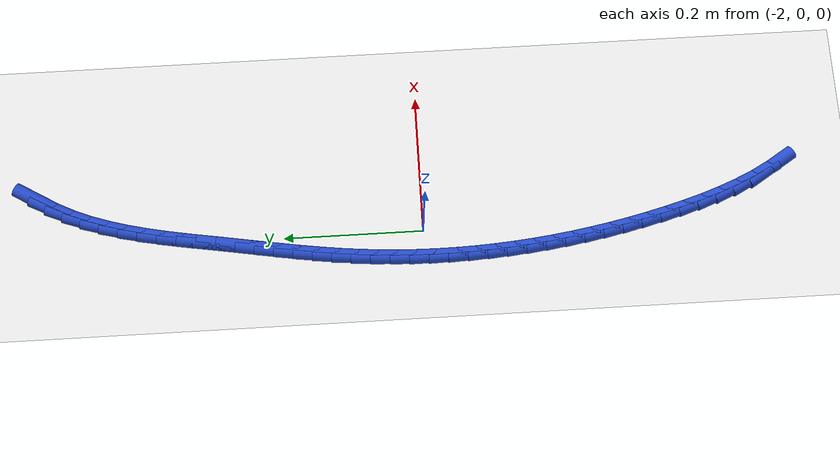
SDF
<sdf version="1.6">
 <world name="default">
  <model name="ground_plane">
   <static>1</static>
   <link name="link">
    <collision name="collision">
     <geometry><plane><normal>0 0 1</normal><size>100 100</size></plane></geometry>
     <surface><friction><ode><mu>100</mu><mu2>50</mu2></ode></friction></surface>
    </collision>
    <visual name="visual">
     <cast_shadows>0</cast_shadows>
     <geometry><plane><normal>0 0 1</normal><size>100 100</size></plane></geometry>
     <material>
      <script><uri>file://media/materials/scripts/gazebo.material</uri><name>Gazebo/WhiteGlow</name></script>
     </material>
    </visual>
   </link>
  </model>
  <model name="line">
   <link name="link_100">
    <pose>-1.9276568317619174 0.5463120573946518 0.01 0 1.57 1.0361481505127497</pose>
    <collision name="collision">
     <geometry><cylinder><radius>0.01</radius><length>0.08</length></cylinder></geometry>
    </collision>
    <visual name="visual">
     <material>
      <script><name>Gazebo/Blue</name><uri>file://media/materials/scripts/gazebo.material</uri></script>
     </material>
     <geometry><cylinder><radius>0.01</radius><length>0.08</length></cylinder></geometry>
    </visual>
   </link>
   <link name="link_101">
    <pose>-1.9413688873857438 0.5231567634488093 0.01 0 1.57 1.114810387325386</pose>
    <collision name="collision">
     <geometry><cylinder><radius>0.01</radius><length>0.08</length></cylinder></geometry>
    </collision>
    <visual name="visual">
     <material>
      <script><name>Gazebo/Blue</name><uri>file://media/materials/scripts/gazebo.material</uri></script>
     </material>
     <geometry><cylinder><radius>0.01</radius><length>0.08</length></cylinder></geometry>
    </visual>
   </link>
   <link name="link_102">
    <pose>-1.9532353547929067 0.49896216054540987 0.01 0 1.57 1.1866396649966138</pose>
    <collision name="collision">
     <geometry><cylinder><radius>0.01</radius><length>0.08</length></cylinder></geometry>
    </collision>
    <visual name="visual">
     <material>
      <script><name>Gazebo/Blue</name><uri>file://media/materials/scripts/gazebo.material</uri></script>
     </material>
     <geometry><cylinder><radius>0.01</radius><length>0.08</length></cylinder></geometry>
    </visual>
   </link>
   <link name="link_103">
    <pose>-1.963398356713197 0.4738211840821822 0.01 0 1.57 1.2478036752640835</pose>
    <collision name="collision">
     <geometry><cylinder><radius>0.01</radius><length>0.08</length></cylinder></geometry>
    </collision>
    <visual name="visual">
     <material>
      <script><name>Gazebo/Blue</name><uri>file://media/materials/scripts/gazebo.material</uri></script>
     </material>
     <geometry><cylinder><radius>0.01</radius><length>0.08</length></cylinder></geometry>
    </visual>
   </link>
   <link name="link_104">
    <pose>-1.9720823165234624 0.4478767674847543 0.01 0 1.57 1.2984861281508806</pose>
    <collision name="collision">
     <geometry><cylinder><radius>0.01</radius><length>0.08</length></cylinder></geometry>
    </collision>
    <visual name="visual">
     <material>
      <script><name>Gazebo/Blue</name><uri>file://media/materials/scripts/gazebo.material</uri></script>
     </material>
     <geometry><cylinder><radius>0.01</radius><length>0.08</length></cylinder></geometry>
    </visual>
   </link>
   <link name="link_105">
    <pose>-1.9795116582403096 0.42127184456741174 0.01 0 1.57 1.3390984253755343</pose>
    <collision name="collision">
     <geometry><cylinder><radius>0.01</radius><length>0.08</length></cylinder></geometry>
    </collision>
    <visual name="visual">
     <material>
      <script><name>Gazebo/Blue</name><uri>file://media/materials/scripts/gazebo.material</uri></script>
     </material>
     <geometry><cylinder><radius>0.01</radius><length>0.08</length></cylinder></geometry>
    </visual>
   </link>
   <link name="link_106">
    <pose>-1.985910805880345 0.39414934914443855 0.01 0 1.57 1.37011760212782</pose>
    <collision name="collision">
     <geometry><cylinder><radius>0.01</radius><length>0.08</length></cylinder></geometry>
    </collision>
    <visual name="visual">
     <material>
      <script><name>Gazebo/Blue</name><uri>file://media/materials/scripts/gazebo.material</uri></script>
     </material>
     <geometry><cylinder><radius>0.01</radius><length>0.08</length></cylinder></geometry>
    </visual>
   </link>
   <link name="link_107">
    <pose>-1.9915041834601732 0.3666522150301193 0.01 0 1.57 1.3919754883610613</pose>
    <collision name="collision">
     <geometry><cylinder><radius>0.01</radius><length>0.08</length></cylinder></geometry>
    </collision>
    <visual name="visual">
     <material>
      <script><name>Gazebo/Blue</name><uri>file://media/materials/scripts/gazebo.material</uri></script>
     </material>
     <geometry><cylinder><radius>0.01</radius><length>0.08</length></cylinder></geometry>
    </visual>
   </link>
   <link name="link_108">
    <pose>-1.996516214996402 0.3389233760387384 0.01 0 1.57 1.4049887167758068</pose>
    <collision name="collision">
     <geometry><cylinder><radius>0.01</radius><length>0.08</length></cylinder></geometry>
    </collision>
    <visual name="visual">
     <material>
      <script><name>Gazebo/Blue</name><uri>file://media/materials/scripts/gazebo.material</uri></script>
     </material>
     <geometry><cylinder><radius>0.01</radius><length>0.08</length></cylinder></geometry>
    </visual>
   </link>
   <link name="link_109">
    <pose>-2.001171324505637 0.31110576598458106 0.01 0 1.57 1.4093166347816044</pose>
    <collision name="collision">
     <geometry><cylinder><radius>0.01</radius><length>0.08</length></cylinder></geometry>
    </collision>
    <visual name="visual">
     <material>
      <script><name>Gazebo/Blue</name><uri>file://media/materials/scripts/gazebo.material</uri></script>
     </material>
     <geometry><cylinder><radius>0.01</radius><length>0.08</length></cylinder></geometry>
    </visual>
   </link>
   <link name="link_110">
    <pose>-2.0056939360044836 0.2833423186819314 0.01 0 1.57 1.4064392846585951</pose>
    <collision name="collision">
     <geometry><cylinder><radius>0.01</radius><length>0.08</length></cylinder></geometry>
    </collision>
    <visual name="visual">
     <material>
      <script><name>Gazebo/Blue</name><uri>file://media/materials/scripts/gazebo.material</uri></script>
     </material>
     <geometry><cylinder><radius>0.01</radius><length>0.08</length></cylinder></geometry>
    </visual>
   </link>
   <link name="link_111">
    <pose>-2.0102694812862465 0.25575438732183786 0.01 0 1.57 1.4048451146574836</pose>
    <collision name="collision">
     <geometry><cylinder><radius>0.01</radius><length>0.08</length></cylinder></geometry>
    </collision>
    <visual name="visual">
     <material>
      <script><name>Gazebo/Blue</name><uri>file://media/materials/scripts/gazebo.material</uri></script>
     </material>
     <geometry><cylinder><radius>0.01</radius><length>0.08</length></cylinder></geometry>
    </visual>
   </link>
   <link name="link_112">
    <pose>-2.014861110557623 0.22834030120066914 0.01 0 1.57 1.4076223490007251</pose>
    <collision name="collision">
     <geometry><cylinder><radius>0.01</radius><length>0.08</length></cylinder></geometry>
    </collision>
    <visual name="visual">
     <material>
      <script><name>Gazebo/Blue</name><uri>file://media/materials/scripts/gazebo.material</uri></script>
     </material>
     <geometry><cylinder><radius>0.01</radius><length>0.08</length></cylinder></geometry>
    </visual>
   </link>
   <link name="link_113">
    <pose>-2.0193533249227245 0.20105486050804078 0.01 0 1.57 1.4148347682911617</pose>
    <collision name="collision">
     <geometry><cylinder><radius>0.01</radius><length>0.08</length></cylinder></geometry>
    </collision>
    <visual name="visual">
     <material>
      <script><name>Gazebo/Blue</name><uri>file://media/materials/scripts/gazebo.material</uri></script>
     </material>
     <geometry><cylinder><radius>0.01</radius><length>0.08</length></cylinder></geometry>
    </visual>
   </link>
   <link name="link_114">
    <pose>-2.023630534329399 0.17385281498224908 0.01 0 1.57 1.4265169240975755</pose>
    <collision name="collision">
     <geometry><cylinder><radius>0.01</radius><length>0.08</length></cylinder></geometry>
    </collision>
    <visual name="visual">
     <material>
      <script><name>Gazebo/Blue</name><uri>file://media/materials/scripts/gazebo.material</uri></script>
     </material>
     <geometry><cylinder><radius>0.01</radius><length>0.08</length></cylinder></geometry>
    </visual>
   </link>
   <link name="link_115">
    <pose>-2.0275771487254937 0.14668891436159032 0.01 0 1.57 1.4426724614749207</pose>
    <collision name="collision">
     <geometry><cylinder><radius>0.01</radius><length>0.08</length></cylinder></geometry>
    </collision>
    <visual name="visual">
     <material>
      <script><name>Gazebo/Blue</name><uri>file://media/materials/scripts/gazebo.material</uri></script>
     </material>
     <geometry><cylinder><radius>0.01</radius><length>0.08</length></cylinder></geometry>
    </visual>
   </link>
   <link name="link_116">
    <pose>-2.0310775780588526 0.11951790838436188 0.01 0 1.57 1.4632358579321882</pose>
    <collision name="collision">
     <geometry><cylinder><radius>0.01</radius><length>0.08</length></cylinder></geometry>
    </collision>
    <visual name="visual">
     <material>
      <script><name>Gazebo/Blue</name><uri>file://media/materials/scripts/gazebo.material</uri></script>
     </material>
     <geometry><cylinder><radius>0.01</radius><length>0.08</length></cylinder></geometry>
    </visual>
   </link>
   <link name="link_117">
    <pose>-2.0340170401562734 0.09229491855707603 0.01 0 1.57 1.4864393853423197</pose>
    <collision name="collision">
     <geometry><cylinder><radius>0.01</radius><length>0.08</length></cylinder></geometry>
    </collision>
    <visual name="visual">
     <material>
      <script><name>Gazebo/Blue</name><uri>file://media/materials/scripts/gazebo.material</uri></script>
     </material>
     <geometry><cylinder><radius>0.01</radius><length>0.08</length></cylinder></geometry>
    </visual>
   </link>
   <link name="link_118">
    <pose>-2.036325404109787 0.06499561392150699 0.01 0 1.57 1.5097000524742115</pose>
    <collision name="collision">
     <geometry><cylinder><radius>0.01</radius><length>0.08</length></cylinder></geometry>
    </collision>
    <visual name="visual">
     <material>
      <script><name>Gazebo/Blue</name><uri>file://media/materials/scripts/gazebo.material</uri></script>
     </material>
     <geometry><cylinder><radius>0.01</radius><length>0.08</length></cylinder></geometry>
    </visual>
   </link>
   <link name="link_119">
    <pose>-2.037999636230829 0.03762654019166562 0.01 0 1.57 1.5328048510033225</pose>
    <collision name="collision">
     <geometry><cylinder><radius>0.01</radius><length>0.08</length></cylinder></geometry>
    </collision>
    <visual name="visual">
     <material>
      <script><name>Gazebo/Blue</name><uri>file://media/materials/scripts/gazebo.material</uri></script>
     </material>
     <geometry><cylinder><radius>0.01</radius><length>0.08</length></cylinder></geometry>
    </visual>
   </link>
   <link name="link_120">
    <pose>-2.0390422346312964 0.010196788695096699 0.01 0 1.57 1.555752241240177</pose>
    <collision name="collision">
     <geometry><cylinder><radius>0.01</radius><length>0.08</length></cylinder></geometry>
    </collision>
    <visual name="visual">
     <material>
      <script><name>Gazebo/Blue</name><uri>file://media/materials/scripts/gazebo.material</uri></script>
     </material>
     <geometry><cylinder><radius>0.01</radius><length>0.08</length></cylinder></geometry>
    </visual>
   </link>
   <link name="link_121">
    <pose>-2.0394556974230853 -0.017284549240656186 0.01 0 1.57 -1.5630513865373092</pose>
    <collision name="collision">
     <geometry><cylinder><radius>0.01</radius><length>0.08</length></cylinder></geometry>
    </collision>
    <visual name="visual">
     <material>
      <script><name>Gazebo/Blue</name><uri>file://media/materials/scripts/gazebo.material</uri></script>
     </material>
     <geometry><cylinder><radius>0.01</radius><length>0.08</length></cylinder></geometry>
    </visual>
   </link>
   <link name="link_122">
    <pose>-2.039242522718092 -0.04480838228804897 0.01 0 1.57 -1.5404211276250255</pose>
    <collision name="collision">
     <geometry><cylinder><radius>0.01</radius><length>0.08</length></cylinder></geometry>
    </collision>
    <visual name="visual">
     <material>
      <script><name>Gazebo/Blue</name><uri>file://media/materials/scripts/gazebo.material</uri></script>
     </material>
     <geometry><cylinder><radius>0.01</radius><length>0.08</length></cylinder></geometry>
    </visual>
   </link>
   <link name="link_123">
    <pose>-2.0384052086282143 -0.07236561911953765 0.01 0 1.57 -1.5179495156313365</pose>
    <collision name="collision">
     <geometry><cylinder><radius>0.01</radius><length>0.08</length></cylinder></geometry>
    </collision>
    <visual name="visual">
     <material>
      <script><name>Gazebo/Blue</name><uri>file://media/materials/scripts/gazebo.material</uri></script>
     </material>
     <geometry><cylinder><radius>0.01</radius><length>0.08</length></cylinder></geometry>
    </visual>
   </link>
   <link name="link_124">
    <pose>-2.036946253265346 -0.09994716840757818 0.01 0 1.57 -1.4956359402491022</pose>
    <collision name="collision">
     <geometry><cylinder><radius>0.01</radius><length>0.08</length></cylinder></geometry>
    </collision>
    <visual name="visual">
     <material>
      <script><name>Gazebo/Blue</name><uri>file://media/materials/scripts/gazebo.material</uri></script>
     </material>
     <geometry><cylinder><radius>0.01</radius><length>0.08</length></cylinder></geometry>
    </visual>
   </link>
   <link name="link_125">
    <pose>-2.0348681547413863 -0.12754393882462736 0.01 0 1.57 -1.4734793335671696</pose>
    <collision name="collision">
     <geometry><cylinder><radius>0.01</radius><length>0.08</length></cylinder></geometry>
    </collision>
    <visual name="visual">
     <material>
      <script><name>Gazebo/Blue</name><uri>file://media/materials/scripts/gazebo.material</uri></script>
     </material>
     <geometry><cylinder><radius>0.01</radius><length>0.08</length></cylinder></geometry>
    </visual>
   </link>
   <link name="link_126">
    <pose>-2.032173411168231 -0.1551468390431396 0.01 0 1.57 -1.4514782030770943</pose>
    <collision name="collision">
     <geometry><cylinder><radius>0.01</radius><length>0.08</length></cylinder></geometry>
    </collision>
    <visual name="visual">
     <material>
      <script><name>Gazebo/Blue</name><uri>file://media/materials/scripts/gazebo.material</uri></script>
     </material>
     <geometry><cylinder><radius>0.01</radius><length>0.08</length></cylinder></geometry>
    </visual>
   </link>
   <link name="link_127">
    <pose>-2.028864520657775 -0.18274677773557174 0.01 0 1.57 -1.4296306646881176</pose>
    <collision name="collision">
     <geometry><cylinder><radius>0.01</radius><length>0.08</length></cylinder></geometry>
    </collision>
    <visual name="visual">
     <material>
      <script><name>Gazebo/Blue</name><uri>file://media/materials/scripts/gazebo.material</uri></script>
     </material>
     <geometry><cylinder><radius>0.01</radius><length>0.08</length></cylinder></geometry>
    </visual>
   </link>
   <link name="link_128">
    <pose>-2.024943981321917 -0.2103346635743796 0.01 0 1.57 -1.407934475508109</pose>
    <collision name="collision">
     <geometry><cylinder><radius>0.01</radius><length>0.08</length></cylinder></geometry>
    </collision>
    <visual name="visual">
     <material>
      <script><name>Gazebo/Blue</name><uri>file://media/materials/scripts/gazebo.material</uri></script>
     </material>
     <geometry><cylinder><radius>0.01</radius><length>0.08</length></cylinder></geometry>
    </visual>
   </link>
   <link name="link_129">
    <pose>-2.020414291272553 -0.2379014052320193 0.01 0 1.57 -1.3863870661801525</pose>
    <collision name="collision">
     <geometry><cylinder><radius>0.01</radius><length>0.08</length></cylinder></geometry>
    </collision>
    <visual name="visual">
     <material>
      <script><name>Gazebo/Blue</name><uri>file://media/materials/scripts/gazebo.material</uri></script>
     </material>
     <geometry><cylinder><radius>0.01</radius><length>0.08</length></cylinder></geometry>
    </visual>
   </link>
   <link name="link_130">
    <pose>-2.015277948621579 -0.2654379113809468 0.01 0 1.57 -1.3649855725942714</pose>
    <collision name="collision">
     <geometry><cylinder><radius>0.01</radius><length>0.08</length></cylinder></geometry>
    </collision>
    <visual name="visual">
     <material>
      <script><name>Gazebo/Blue</name><uri>file://media/materials/scripts/gazebo.material</uri></script>
     </material>
     <geometry><cylinder><radius>0.01</radius><length>0.08</length></cylinder></geometry>
    </visual>
   </link>
   <link name="link_131">
    <pose>-2.0095374514808912 -0.292935090693618 0.01 0 1.57 -1.3437268668236417</pose>
    <collision name="collision">
     <geometry><cylinder><radius>0.01</radius><length>0.08</length></cylinder></geometry>
    </collision>
    <visual name="visual">
     <material>
      <script><name>Gazebo/Blue</name><uri>file://media/materials/scripts/gazebo.material</uri></script>
     </material>
     <geometry><cylinder><radius>0.01</radius><length>0.08</length></cylinder></geometry>
    </visual>
   </link>
   <link name="link_132">
    <pose>-2.0031952979623866 -0.32038385184248974 0.01 0 1.57 -1.3226075871620044</pose>
    <collision name="collision">
     <geometry><cylinder><radius>0.01</radius><length>0.08</length></cylinder></geometry>
    </collision>
    <visual name="visual">
     <material>
      <script><name>Gazebo/Blue</name><uri>file://media/materials/scripts/gazebo.material</uri></script>
     </material>
     <geometry><cylinder><radius>0.01</radius><length>0.08</length></cylinder></geometry>
    </visual>
   </link>
   <link name="link_133">
    <pose>-1.9962539861779622 -0.3477751035000165 0.01 0 1.57 -1.301099924794298</pose>
    <collision name="collision">
     <geometry><cylinder><radius>0.01</radius><length>0.08</length></cylinder></geometry>
    </collision>
    <visual name="visual">
     <material>
      <script><name>Gazebo/Blue</name><uri>file://media/materials/scripts/gazebo.material</uri></script>
     </material>
     <geometry><cylinder><radius>0.01</radius><length>0.08</length></cylinder></geometry>
    </visual>
   </link>
   <link name="link_134">
    <pose>-1.9887041230786748 -0.37508699905204107 0.01 0 1.57 -1.2745186344548505</pose>
    <collision name="collision">
     <geometry><cylinder><radius>0.01</radius><length>0.08</length></cylinder></geometry>
    </collision>
    <visual name="visual">
     <material>
      <script><name>Gazebo/Blue</name><uri>file://media/materials/scripts/gazebo.material</uri></script>
     </material>
     <geometry><cylinder><radius>0.01</radius><length>0.08</length></cylinder></geometry>
    </visual>
   </link>
   <link name="link_135">
    <pose>-1.980431908513148 -0.40218569756070355 0.01 0 1.57 -1.2401494269079516</pose>
    <collision name="collision">
     <geometry><cylinder><radius>0.01</radius><length>0.08</length></cylinder></geometry>
    </collision>
    <visual name="visual">
     <material>
      <script><name>Gazebo/Blue</name><uri>file://media/materials/scripts/gazebo.material</uri></script>
     </material>
     <geometry><cylinder><radius>0.01</radius><length>0.08</length></cylinder></geometry>
    </visual>
   </link>
   <link name="link_136">
    <pose>-1.971269395608131 -0.4288792765462268 0.01 0 1.57 -1.1974855786210774</pose>
    <collision name="collision">
     <geometry><cylinder><radius>0.01</radius><length>0.08</length></cylinder></geometry>
    </collision>
    <visual name="visual">
     <material>
      <script><name>Gazebo/Blue</name><uri>file://media/materials/scripts/gazebo.material</uri></script>
     </material>
     <geometry><cylinder><radius>0.01</radius><length>0.08</length></cylinder></geometry>
    </visual>
   </link>
   <link name="link_137">
    <pose>-1.9610481782823352 -0.4549753209503344 0.01 0 1.57 -1.1459532543724267</pose>
    <collision name="collision">
     <geometry><cylinder><radius>0.01</radius><length>0.08</length></cylinder></geometry>
    </collision>
    <visual name="visual">
     <material>
      <script><name>Gazebo/Blue</name><uri>file://media/materials/scripts/gazebo.material</uri></script>
     </material>
     <geometry><cylinder><radius>0.01</radius><length>0.08</length></cylinder></geometry>
    </visual>
   </link>
   <link name="link_138">
    <pose>-1.9495998504544705 -0.4802814157147493 0.01 0 1.57 -1.0849710271798236</pose>
    <collision name="collision">
     <geometry><cylinder><radius>0.01</radius><length>0.08</length></cylinder></geometry>
    </collision>
    <visual name="visual">
     <material>
      <script><name>Gazebo/Blue</name><uri>file://media/materials/scripts/gazebo.material</uri></script>
     </material>
     <geometry><cylinder><radius>0.01</radius><length>0.08</length></cylinder></geometry>
    </visual>
   </link>
   <link name="link_139">
    <pose>-1.9367560060432476 -0.5046051457811949 0.01 0 1.57 -1.0140732061262514</pose>
    <collision name="collision">
     <geometry><cylinder><radius>0.01</radius><length>0.08</length></cylinder></geometry>
    </collision>
    <visual name="visual">
     <material>
      <script><name>Gazebo/Blue</name><uri>file://media/materials/scripts/gazebo.material</uri></script>
     </material>
     <geometry><cylinder><radius>0.01</radius><length>0.08</length></cylinder></geometry>
    </visual>
   </link>
  </model>
 </world>
</sdf>
